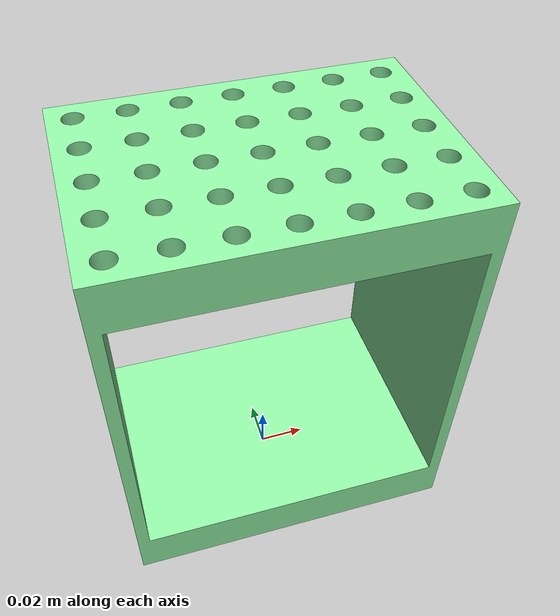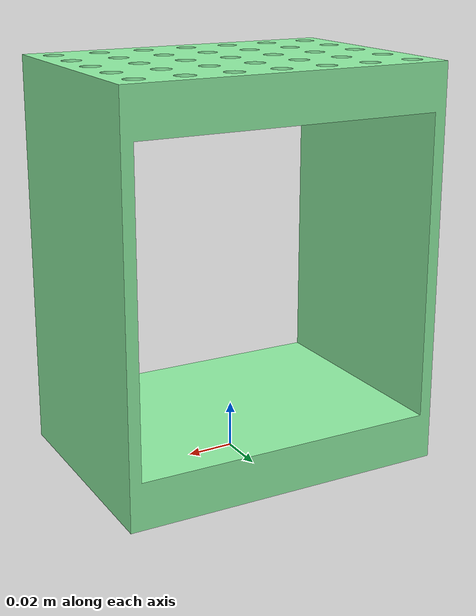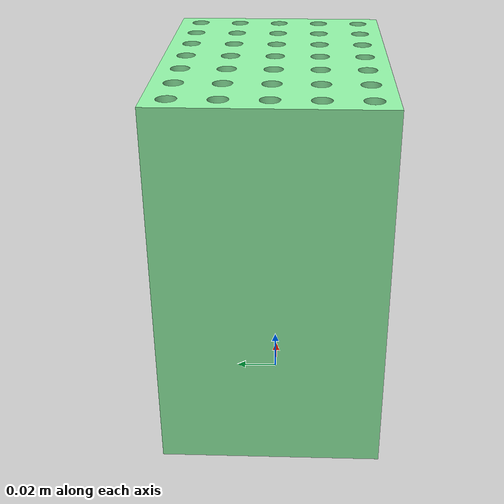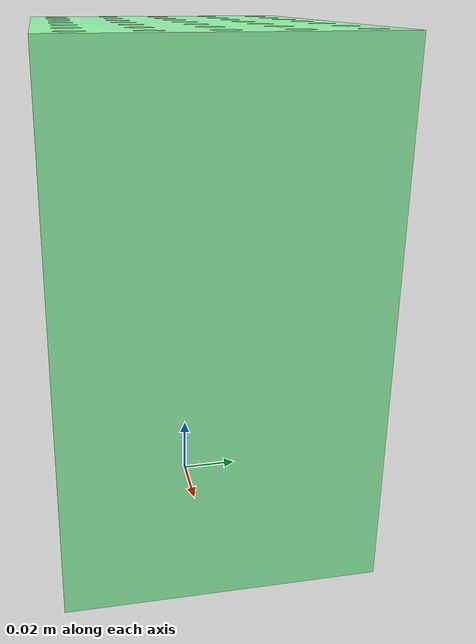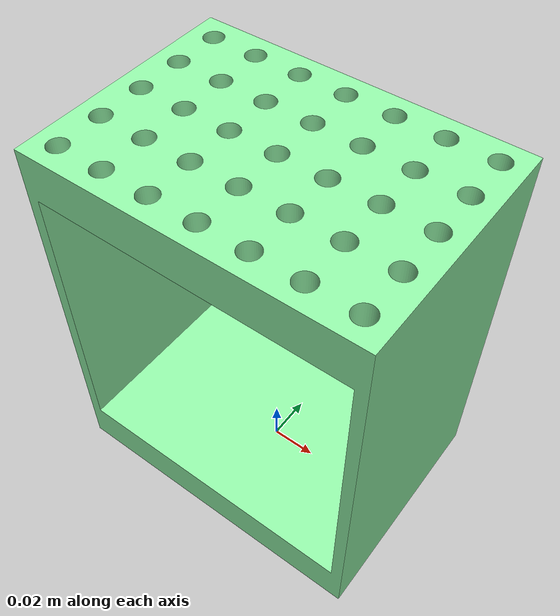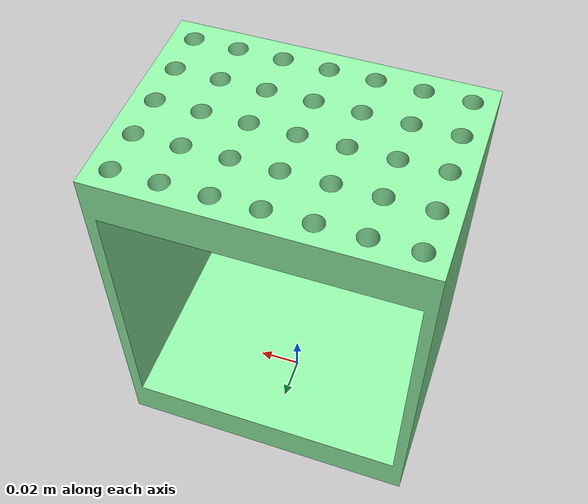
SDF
<?xml version='1.0'?>
<sdf version='1.7'>
  <model name='tip_tripod'>
    <link name='link'>
      <self_collide>0</self_collide>
      <enable_wind>0</enable_wind>
      <kinematic>0</kinematic>
      <pose>0 0 0 0 -0 0</pose>
      <gravity>1</gravity>
      <inertial>
        <mass>0.5</mass>
        <pose>0 0 0 0 -0 0</pose>
        <inertia>
          <ixx>0</ixx>
          <ixy>0</ixy>
          <ixz>0</ixz>
          <iyy>0</iyy>
          <iyz>0</iyz>
          <izz>0</izz>
        </inertia>
      </inertial>
      <visual name='visual'>
        <geometry>
          <mesh>
            <uri>file://models/tip_tripod/meshes/tip_tripod.stl</uri>
            <scale>1 1 1</scale>
          </mesh>
        </geometry>
        <material>
          <shader type='pixel'>
            <normal_map>__default__</normal_map>
          </shader>
          <script>
            <name>ModelPreview_3::link::visual_MATERIAL_</name>
            <uri>__default__</uri>
          </script>
          <ambient>0.561 0.941 0.643 1</ambient>
          <diffuse>0.561 0.941 0.643 1</diffuse>
          <specular>0.01 0.01 0.01 1</specular>
          <emissive>0.01 0.01 0.01 1</emissive>
          <lighting>1</lighting>
        </material>
        <pose>0 0 0 0 -0 0</pose>
        <transparency>0</transparency>
        <cast_shadows>1</cast_shadows>
      </visual>
      <collision name='collision'>
        <laser_retro>0</laser_retro>
        <max_contacts>10</max_contacts>
        <pose>0 0 0 0 -0 0</pose>
        <geometry>
          <mesh>
            <uri>file://models/tip_tripod/meshes/tip_tripod.stl</uri>
            <scale>1 1 1</scale>
          </mesh>
        </geometry>
        <surface>
          <friction>
            <ode>
              <mu>1</mu>
              <mu2>1</mu2>
              <fdir1>0 0 0</fdir1>
              <slip1>0</slip1>
              <slip2>0</slip2>
            </ode>
            <torsional>
              <coefficient>1</coefficient>
              <patch_radius>0</patch_radius>
              <surface_radius>0</surface_radius>
              <use_patch_radius>1</use_patch_radius>
              <ode>
                <slip>0</slip>
              </ode>
            </torsional>
          </friction>
          <bounce>
            <restitution_coefficient>0</restitution_coefficient>
            <threshold>1e+06</threshold>
          </bounce>
          <contact>
            <collide_without_contact>0</collide_without_contact>
            <collide_without_contact_bitmask>1</collide_without_contact_bitmask>
            <collide_bitmask>1</collide_bitmask>
            <ode>
              <soft_cfm>0</soft_cfm>
              <soft_erp>0.2</soft_erp>
              <kp>1e+13</kp>
              <kd>1</kd>
              <max_vel>0.01</max_vel>
              <min_depth>0</min_depth>
            </ode>
            <bullet>
              <split_impulse>1</split_impulse>
              <split_impulse_penetration_threshold>-0.01</split_impulse_penetration_threshold>
              <soft_cfm>0</soft_cfm>
              <soft_erp>0.2</soft_erp>
              <kp>1e+13</kp>
              <kd>1</kd>
            </bullet>
          </contact>
        </surface>
      </collision>
    </link>
    <static>0</static>
    <allow_auto_disable>1</allow_auto_disable>
  </model>
</sdf>
